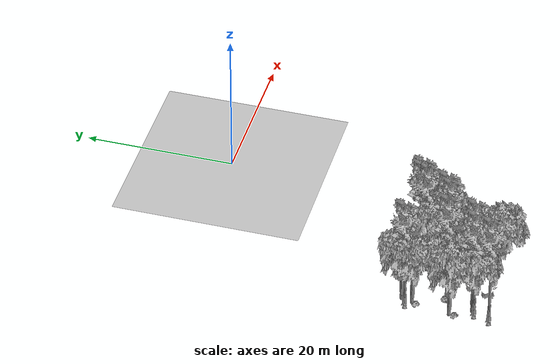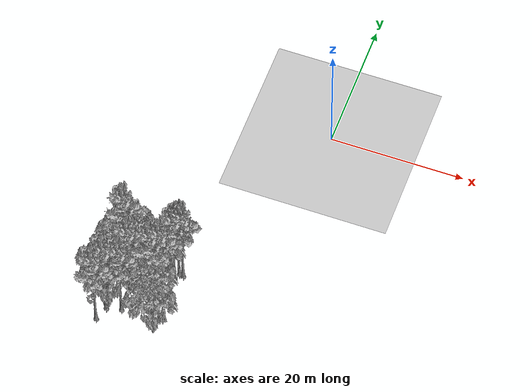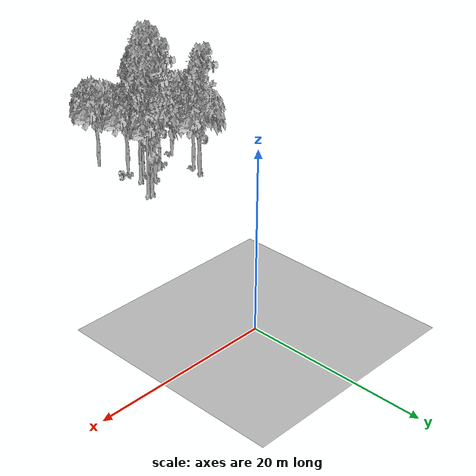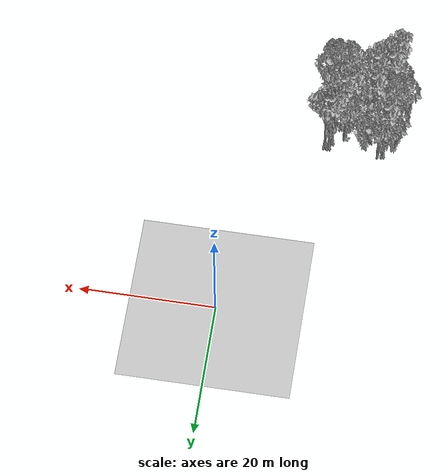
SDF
<sdf version="1.7">
 <world name="default">
  <model name="ground_plane">
   <static>1</static>
   <link name="link">
    <collision name="collision">
     <pose>-50 0 0 0 -0 0</pose>
     <geometry><plane><normal>0 0 1</normal><size>80 80</size></plane></geometry>
     <surface><contact><ode><min_depth>0.01</min_depth><max_vel>0</max_vel></ode></contact></surface>
    </collision>
    <visual name="grass">
     <cast_shadows>0</cast_shadows>
     <geometry>
      <mesh>
       <scale>0.46714285714285714 0.46714285714285714 0.1</scale>
       <uri>file://grass_plane/meshes/grass_plane.dae</uri>
      </mesh>
     </geometry>
    </visual>
   </link>
  </model>
  <model name="Tree 7">
   <static>1</static>
   <pose>-17.99532547651775 -37.05101078377296 0 1.57079 -0 0</pose>
   <link name="link">
    <collision name="collision">
     <geometry><mesh><scale>3.5 5 3.5</scale><uri>model://tree_9/meshes/tree_9.obj</uri></mesh></geometry>
    </collision>
    <visual name="visual">
     <geometry><mesh><scale>3.5 5 3.5</scale><uri>model://tree_9/meshes/tree_9.obj</uri></mesh></geometry>
    </visual>
   </link>
  </model>
  <model name="Tree 11">
   <static>1</static>
   <pose>-12.445120965759767 -28.860462719379623 0 1.57079 -0 0</pose>
   <link name="link">
    <collision name="collision">
     <geometry><mesh><scale>3.5 5 3.5</scale><uri>model://tree_9/meshes/tree_9.obj</uri></mesh></geometry>
    </collision>
    <visual name="visual">
     <geometry><mesh><scale>3.5 5 3.5</scale><uri>model://tree_9/meshes/tree_9.obj</uri></mesh></geometry>
    </visual>
   </link>
  </model>
  <model name="Tree 269">
   <static>1</static>
   <pose>-14.038742540648808 -35.066106812606236 0 1.57079 -0 0</pose>
   <link name="link">
    <collision name="collision">
     <geometry><mesh><scale>3.5 5 3.5</scale><uri>model://tree_2/meshes/tree_2.obj</uri></mesh></geometry>
    </collision>
    <visual name="visual">
     <geometry><mesh><scale>3.5 5 3.5</scale><uri>model://tree_2/meshes/tree_2.obj</uri></mesh></geometry>
    </visual>
   </link>
  </model>
  <model name="Tree 470">
   <static>1</static>
   <pose>-20.54464627730116 -28.7130218642368 0 1.57079 -0 0</pose>
   <link name="link">
    <collision name="collision">
     <geometry><mesh><scale>3.5 5 3.5</scale><uri>model://tree_9/meshes/tree_9.obj</uri></mesh></geometry>
    </collision>
    <visual name="visual">
     <geometry><mesh><scale>3.5 5 3.5</scale><uri>model://tree_9/meshes/tree_9.obj</uri></mesh></geometry>
    </visual>
   </link>
  </model>
  <model name="Tree 478">
   <static>1</static>
   <pose>-21.261360642535227 -34.60015507297832 0 1.57079 -0 0</pose>
   <link name="link">
    <collision name="collision">
     <geometry><mesh><scale>3.5 5 3.5</scale><uri>model://tree_2/meshes/tree_2.obj</uri></mesh></geometry>
    </collision>
    <visual name="visual">
     <geometry><mesh><scale>3.5 5 3.5</scale><uri>model://tree_2/meshes/tree_2.obj</uri></mesh></geometry>
    </visual>
   </link>
  </model>
  <model name="Tree 493">
   <static>1</static>
   <pose>-19.932343215000962 -37.2810102414266 0 1.57079 -0 0</pose>
   <link name="link">
    <collision name="collision">
     <geometry><mesh><scale>3.5 5 3.5</scale><uri>model://tree_2/meshes/tree_2.obj</uri></mesh></geometry>
    </collision>
    <visual name="visual">
     <geometry><mesh><scale>3.5 5 3.5</scale><uri>model://tree_2/meshes/tree_2.obj</uri></mesh></geometry>
    </visual>
   </link>
  </model>
  <model name="Tree 515">
   <static>1</static>
   <pose>-20.307651517539902 -29.59818976017683 0 1.57079 -0 0</pose>
   <link name="link">
    <collision name="collision">
     <geometry><mesh><scale>3.5 5 3.5</scale><uri>model://tree_2/meshes/tree_2.obj</uri></mesh></geometry>
    </collision>
    <visual name="visual">
     <geometry><mesh><scale>3.5 5 3.5</scale><uri>model://tree_2/meshes/tree_2.obj</uri></mesh></geometry>
    </visual>
   </link>
  </model>
  <model name="Tree 527">
   <static>1</static>
   <pose>-12.844632539486536 -29.75840680637812 0 1.57079 -0 0</pose>
   <link name="link">
    <collision name="collision">
     <geometry><mesh><scale>3.5 5 3.5</scale><uri>model://tree_9/meshes/tree_9.obj</uri></mesh></geometry>
    </collision>
    <visual name="visual">
     <geometry><mesh><scale>3.5 5 3.5</scale><uri>model://tree_9/meshes/tree_9.obj</uri></mesh></geometry>
    </visual>
   </link>
  </model>
  <model name="Tree 543">
   <static>1</static>
   <pose>-14.945217832422529 -33.25324519645782 0 1.57079 -0 0</pose>
   <link name="link">
    <collision name="collision">
     <geometry><mesh><scale>3.5 5 3.5</scale><uri>model://tree_9/meshes/tree_9.obj</uri></mesh></geometry>
    </collision>
    <visual name="visual">
     <geometry><mesh><scale>3.5 5 3.5</scale><uri>model://tree_9/meshes/tree_9.obj</uri></mesh></geometry>
    </visual>
   </link>
  </model>
  <model name="Tree 572">
   <static>1</static>
   <pose>-13.797809472839749 -32.47564702700495 0 1.57079 -0 0</pose>
   <link name="link">
    <collision name="collision">
     <geometry><mesh><scale>3.5 5 3.5</scale><uri>model://tree_9/meshes/tree_9.obj</uri></mesh></geometry>
    </collision>
    <visual name="visual">
     <geometry><mesh><scale>3.5 5 3.5</scale><uri>model://tree_9/meshes/tree_9.obj</uri></mesh></geometry>
    </visual>
   </link>
  </model>
  <model name="Tree 600">
   <static>1</static>
   <pose>-19.910106274690587 -28.154678668834528 0 1.57079 -0 0</pose>
   <link name="link">
    <collision name="collision">
     <geometry><mesh><scale>3.5 5 3.5</scale><uri>model://tree_2/meshes/tree_2.obj</uri></mesh></geometry>
    </collision>
    <visual name="visual">
     <geometry><mesh><scale>3.5 5 3.5</scale><uri>model://tree_2/meshes/tree_2.obj</uri></mesh></geometry>
    </visual>
   </link>
  </model>
  <model name="Tree 602">
   <static>1</static>
   <pose>-12.57538720844165 -39.02396325106393 0 1.57079 -0 0</pose>
   <link name="link">
    <collision name="collision">
     <geometry><mesh><scale>3.5 5 3.5</scale><uri>model://tree_2/meshes/tree_2.obj</uri></mesh></geometry>
    </collision>
    <visual name="visual">
     <geometry><mesh><scale>3.5 5 3.5</scale><uri>model://tree_2/meshes/tree_2.obj</uri></mesh></geometry>
    </visual>
   </link>
  </model>
  <model name="Tree 615">
   <static>1</static>
   <pose>-15.676849730789773 -34.50625848857737 0 1.57079 -0 0</pose>
   <link name="link">
    <collision name="collision">
     <geometry><mesh><scale>3.5 5 3.5</scale><uri>model://tree_2/meshes/tree_2.obj</uri></mesh></geometry>
    </collision>
    <visual name="visual">
     <geometry><mesh><scale>3.5 5 3.5</scale><uri>model://tree_2/meshes/tree_2.obj</uri></mesh></geometry>
    </visual>
   </link>
  </model>
  <model name="Tree 622">
   <static>1</static>
   <pose>-11.850951384479167 -28.941766127617683 0 1.57079 -0 0</pose>
   <link name="link">
    <collision name="collision">
     <geometry><mesh><scale>3.5 5 3.5</scale><uri>model://tree_9/meshes/tree_9.obj</uri></mesh></geometry>
    </collision>
    <visual name="visual">
     <geometry><mesh><scale>3.5 5 3.5</scale><uri>model://tree_9/meshes/tree_9.obj</uri></mesh></geometry>
    </visual>
   </link>
  </model>
  <model name="Tree 628">
   <static>1</static>
   <pose>-20.797018005021123 -39.61442781367536 0 1.57079 -0 0</pose>
   <link name="link">
    <collision name="collision">
     <geometry><mesh><scale>3.5 5 3.5</scale><uri>model://tree_9/meshes/tree_9.obj</uri></mesh></geometry>
    </collision>
    <visual name="visual">
     <geometry><mesh><scale>3.5 5 3.5</scale><uri>model://tree_9/meshes/tree_9.obj</uri></mesh></geometry>
    </visual>
   </link>
  </model>
  <model name="Tree 629">
   <static>1</static>
   <pose>-20.09366781160141 -37.53450557808452 0 1.57079 -0 0</pose>
   <link name="link">
    <collision name="collision">
     <geometry><mesh><scale>3.5 5 3.5</scale><uri>model://tree_9/meshes/tree_9.obj</uri></mesh></geometry>
    </collision>
    <visual name="visual">
     <geometry><mesh><scale>3.5 5 3.5</scale><uri>model://tree_9/meshes/tree_9.obj</uri></mesh></geometry>
    </visual>
   </link>
  </model>
  <model name="Tree 631">
   <static>1</static>
   <pose>-14.612321486111743 -30.54684435847029 0 1.57079 -0 0</pose>
   <link name="link">
    <collision name="collision">
     <geometry><mesh><scale>3.5 5 3.5</scale><uri>model://tree_2/meshes/tree_2.obj</uri></mesh></geometry>
    </collision>
    <visual name="visual">
     <geometry><mesh><scale>3.5 5 3.5</scale><uri>model://tree_2/meshes/tree_2.obj</uri></mesh></geometry>
    </visual>
   </link>
  </model>
  <model name="Tree 638">
   <static>1</static>
   <pose>-18.032289374812166 -33.57668356700562 0 1.57079 -0 0</pose>
   <link name="link">
    <collision name="collision">
     <geometry><mesh><scale>3.5 5 3.5</scale><uri>model://tree_9/meshes/tree_9.obj</uri></mesh></geometry>
    </collision>
    <visual name="visual">
     <geometry><mesh><scale>3.5 5 3.5</scale><uri>model://tree_9/meshes/tree_9.obj</uri></mesh></geometry>
    </visual>
   </link>
  </model>
  <model name="Bush 30">
   <static>1</static>
   <pose>-20.43297605175407 -30.127849972894573 0 1.57079 -0 0</pose>
   <link name="link">
    <collision name="collision">
     <geometry><mesh><scale>2 2 2</scale><uri>model://bush_2/meshes/bush_2.obj</uri></mesh></geometry>
     <surface><contact><collide_without_contact>false</collide_without_contact></contact></surface>
    </collision>
    <visual name="visual">
     <geometry><mesh><scale>2 2 2</scale><uri>model://bush_2/meshes/bush_2.obj</uri></mesh></geometry>
    </visual>
   </link>
  </model>
  <model name="Bush 277">
   <static>1</static>
   <pose>-13.511298891582545 -34.300163881478156 0 1.57079 -0 0</pose>
   <link name="link">
    <collision name="collision">
     <geometry><mesh><scale>2 2 2</scale><uri>model://bush_2/meshes/bush_2.obj</uri></mesh></geometry>
     <surface><contact><collide_without_contact>false</collide_without_contact></contact></surface>
    </collision>
    <visual name="visual">
     <geometry><mesh><scale>2 2 2</scale><uri>model://bush_2/meshes/bush_2.obj</uri></mesh></geometry>
    </visual>
   </link>
  </model>
  <model name="Bush 327">
   <static>1</static>
   <pose>-11.98787228823021 -33.88604855136582 0 1.57079 -0 0</pose>
   <link name="link">
    <collision name="collision">
     <geometry><mesh><scale>2 2 2</scale><uri>model://bush_4/meshes/bush_4.obj</uri></mesh></geometry>
     <surface><contact><collide_without_contact>false</collide_without_contact></contact></surface>
    </collision>
    <visual name="visual">
     <geometry><mesh><scale>2 2 2</scale><uri>model://bush_4/meshes/bush_4.obj</uri></mesh></geometry>
    </visual>
   </link>
  </model>
  <model name="Bush 358">
   <static>1</static>
   <pose>-14.821155907942689 -30.813593963645136 0 1.57079 -0 0</pose>
   <link name="link">
    <collision name="collision">
     <geometry><mesh><scale>2 2 2</scale><uri>model://bush_2/meshes/bush_2.obj</uri></mesh></geometry>
     <surface><contact><collide_without_contact>false</collide_without_contact></contact></surface>
    </collision>
    <visual name="visual">
     <geometry><mesh><scale>2 2 2</scale><uri>model://bush_2/meshes/bush_2.obj</uri></mesh></geometry>
    </visual>
   </link>
  </model>
  <model name="Bush 532">
   <static>1</static>
   <pose>-21.174983603252045 -35.27057003627148 0 1.57079 -0 0</pose>
   <link name="link">
    <collision name="collision">
     <geometry><mesh><scale>2 2 2</scale><uri>model://bush_2/meshes/bush_2.obj</uri></mesh></geometry>
     <surface><contact><collide_without_contact>false</collide_without_contact></contact></surface>
    </collision>
    <visual name="visual">
     <geometry><mesh><scale>2 2 2</scale><uri>model://bush_2/meshes/bush_2.obj</uri></mesh></geometry>
    </visual>
   </link>
  </model>
  <model name="Bush 620">
   <static>1</static>
   <pose>-18.532858836552798 -33.43113806614613 0 1.57079 -0 0</pose>
   <link name="link">
    <collision name="collision">
     <geometry><mesh><scale>2 2 2</scale><uri>model://bush_2/meshes/bush_2.obj</uri></mesh></geometry>
     <surface><contact><collide_without_contact>false</collide_without_contact></contact></surface>
    </collision>
    <visual name="visual">
     <geometry><mesh><scale>2 2 2</scale><uri>model://bush_2/meshes/bush_2.obj</uri></mesh></geometry>
    </visual>
   </link>
  </model>
 </world>
</sdf>
